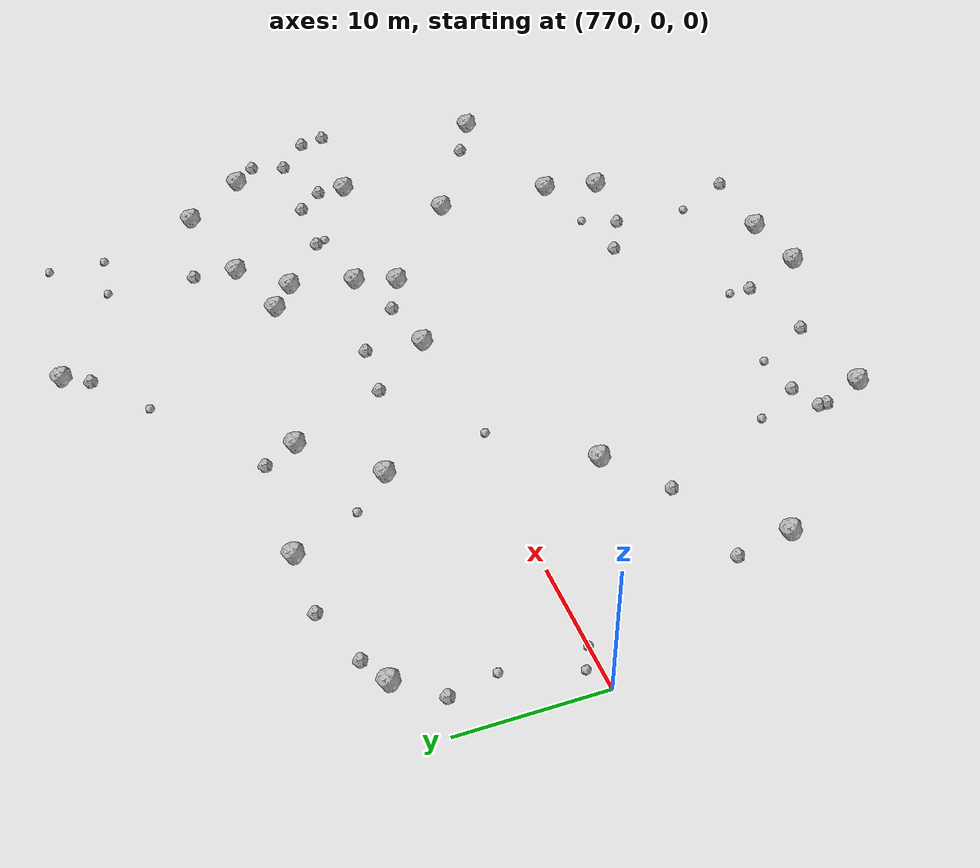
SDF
<sdf version="1.6">
 <world name="default">
  <include><uri>model://sun</uri></include>
  <model name="rock1_20_4">
   <include><uri>model://rock1</uri><pose>816.4699572652448 -6.6781873115841 0.5 0 0 0</pose></include>
  </model>
  <model name="rock1_20_5">
   <include><uri>model://rock1</uri><pose>774.9071217555187 12.044016204833042 0.5 0 0 0</pose></include>
  </model>
  <model name="rock1_20_6">
   <include><uri>model://rock1</uri><pose>824.7101289093531 6.7905320707043515 0.5 0 0 0</pose></include>
  </model>
  <model name="rock1_20_7">
   <include><uri>model://rock1</uri><pose>809.5463753951195 8.370434281833873 0.5 0 0 0</pose></include>
  </model>
  <model name="rock1_20_8">
   <include><uri>model://rock1</uri><pose>788.456252903674 -26.2782019811702 0.5 0 0 0</pose></include>
  </model>
  <model name="rock1_20_9">
   <include><uri>model://rock1</uri><pose>795.8567203639632 11.191984423111613 0.5 0 0 0</pose></include>
  </model>
  <model name="rock1_20_10">
   <include><uri>model://rock1</uri><pose>801.650497171176 -28.2998772106253 0.5 0 0 0</pose></include>
  </model>
  <model name="rock1_20_11">
   <include><uri>model://rock1</uri><pose>802.5344214506752 -0.09090947088737522 0.5 0 0 0</pose></include>
  </model>
  <model name="rock1_20_12">
   <include><uri>model://rock1</uri><pose>814.5396800413902 9.79382268639781 0.5 0 0 0</pose></include>
  </model>
  <model name="rock1_20_13">
   <include><uri>model://rock1</uri><pose>809.5001299171772 -0.6818946380443656 0.5 0 0 0</pose></include>
  </model>
  <model name="rock1_20_14">
   <include><uri>model://rock1</uri><pose>777.5214628877163 -15.467482886772784 0.5 0 0 0</pose></include>
  </model>
  <model name="rock1_20_15">
   <include><uri>model://rock1</uri><pose>787.7295361274123 -6.92897015822669 0.5 0 0 0</pose></include>
  </model>
  <model name="rock1_20_16">
   <include><uri>model://rock1</uri><pose>821.2474925205388 -0.5745139991381407 0.5 0 0 0</pose></include>
  </model>
  <model name="rock1_20_17">
   <include><uri>model://rock1</uri><pose>786.4427217597843 14.243740762325594 0.5 0 0 0</pose></include>
  </model>
  <model name="rock1_20_18">
   <include><uri>model://rock1</uri><pose>816.0014389135431 -14.860661264636823 0.5 0 0 0</pose></include>
  </model>
  <model name="rock1_20_19">
   <include><uri>model://rock1</uri><pose>815.0674559795132 -18.626169831083683 0.5 0 0 0</pose></include>
  </model>
  <model name="rock1_20_20">
   <include><uri>model://rock1</uri><pose>806.2504859571053 -27.56545779930303 0.5 0 0 0</pose></include>
  </model>
  <model name="rock1_20_21">
   <include><uri>model://rock1</uri><pose>811.6077099515703 6.669040707315929 0.5 0 0 0</pose></include>
  </model>
  <model name="rock1_20_22">
   <include><uri>model://rock1</uri><pose>807.5066371829644 24.075634209487063 0.5 0 0 0</pose></include>
  </model>
  <model name="rock1_20_23">
   <include><uri>model://rock1</uri><pose>821.4872874512236 11.25621749599241 0.5 0 0 0</pose></include>
  </model>
  <model name="rock1_20_24">
   <include><uri>model://rock1</uri><pose>791.2341833894866 6.592255918883438 0.5 0 0 0</pose></include>
  </model>
  <model name="rock1_20_25">
   <include><uri>model://rock1</uri><pose>825.7796542693673 -12.258289566524347 0.5 0 0 0</pose></include>
  </model>
  <model name="rock1_20_26">
   <include><uri>model://rock1</uri><pose>810.5203077139465 2.158768651720166 0.5 0 0 0</pose></include>
  </model>
  <model name="rock2_20_0">
   <include><uri>model://rock2</uri><pose>799.7832344703386 -23.92139635782234 0.3 0 0 0</pose></include>
  </model>
  <model name="rock2_20_1">
   <include><uri>model://rock2</uri><pose>772.6216262849634 9.223655508408264 0.3 0 0 0</pose></include>
  </model>
  <model name="rock2_20_2">
   <include><uri>model://rock2</uri><pose>787.1867316012866 -22.660865183382047 0.3 0 0 0</pose></include>
  </model>
  <model name="rock2_20_3">
   <include><uri>model://rock2</uri><pose>827.9980874304762 -1.0545022517879623 0.3 0 0 0</pose></include>
  </model>
  <model name="rock2_20_4">
   <include><uri>model://rock2</uri><pose>822.6692005320319 -10.56212278432421 0.3 0 0 0</pose></include>
  </model>
  <model name="rock2_20_5">
   <include><uri>model://rock2</uri><pose>783.4952446953922 -10.122403630710199 0.3 0 0 0</pose></include>
  </model>
  <model name="rock2_20_6">
   <include><uri>model://rock2</uri><pose>806.4237180458083 22.293154334160768 0.3 0 0 0</pose></include>
  </model>
  <model name="rock2_20_7">
   <include><uri>model://rock2</uri><pose>794.6655467061285 -25.275549436804674 0.3 0 0 0</pose></include>
  </model>
  <model name="rock2_20_8">
   <include><uri>model://rock2</uri><pose>802.9162138180344 3.881990620689038 0.3 0 0 0</pose></include>
  </model>
  <model name="rock2_20_9">
   <include><uri>model://rock2</uri><pose>811.7404438232885 -27.449293635637172 0.3 0 0 0</pose></include>
  </model>
  <model name="rock2_20_10">
   <include><uri>model://rock2</uri><pose>825.2725110932379 2.9013478895616913 0.3 0 0 0</pose></include>
  </model>
  <model name="rock2_20_11">
   <include><uri>model://rock2</uri><pose>776.9441139666368 13.074363279845315 0.3 0 0 0</pose></include>
  </model>
  <model name="rock2_20_12">
   <include><uri>model://rock2</uri><pose>819.7786246135919 3.1763005240881625 0.3 0 0 0</pose></include>
  </model>
  <model name="rock2_20_13">
   <include><uri>model://rock2</uri><pose>781.3714996485426 14.418480986906054 0.3 0 0 0</pose></include>
  </model>
  <model name="rock2_20_14">
   <include><uri>model://rock2</uri><pose>826.051980482241 5.193114812852357 0.3 0 0 0</pose></include>
  </model>
  <model name="rock2_20_15">
   <include><uri>model://rock2</uri><pose>794.5274346512409 13.5913320717301 0.3 0 0 0</pose></include>
  </model>
  <model name="rock2_20_16">
   <include><uri>model://rock2</uri><pose>807.3590879684776 -16.73443129745995 0.3 0 0 0</pose></include>
  </model>
  <model name="rock2_20_17">
   <include><uri>model://rock2</uri><pose>806.5957574352411 0.6821741211756951 0.3 0 0 0</pose></include>
  </model>
  <model name="rock2_20_18">
   <include><uri>model://rock2</uri><pose>789.2571733536189 -21.74527214055534 0.3 0 0 0</pose></include>
  </model>
  <model name="rock2_20_19">
   <include><uri>model://rock2</uri><pose>776.7393866237902 -11.423452220698955 0.3 0 0 0</pose></include>
  </model>
  <model name="rock2_20_20">
   <include><uri>model://rock2</uri><pose>821.2948420000077 1.379020161495113 0.3 0 0 0</pose></include>
  </model>
  <model name="rock2_20_21">
   <include><uri>model://rock2</uri><pose>827.6702913256972 0.7029821795780258 0.3 0 0 0</pose></include>
  </model>
  <model name="rock2_20_22">
   <include><uri>model://rock2</uri><pose>810.1940495514724 -18.228223243769946 0.3 0 0 0</pose></include>
  </model>
  <model name="rock2_20_23">
   <include><uri>model://rock2</uri><pose>787.1766078576254 -23.269018555625046 0.3 0 0 0</pose></include>
  </model>
  <model name="rock2_20_24">
   <include><uri>model://rock2</uri><pose>815.4014411230276 3.4280761561786477 0.3 0 0 0</pose></include>
  </model>
  <model name="rock2_20_25">
   <include><uri>model://rock2</uri><pose>798.8036442992723 4.3348778678390545 0.3 0 0 0</pose></include>
  </model>
  <model name="rock2_20_26">
   <include><uri>model://rock2</uri><pose>814.8238659596514 12.820810071531795 0.3 0 0 0</pose></include>
  </model>
  <model name="rock3_20_0">
   <include><uri>model://rock3</uri><pose>802.5070457276549 19.159942285301895 0.2 0 0 0</pose></include>
  </model>
  <model name="rock3_20_1">
   <include><uri>model://rock3</uri><pose>788.5724952637028 9.296247388857665 0.2 0 0 0</pose></include>
  </model>
  <model name="rock3_20_2">
   <include><uri>model://rock3</uri><pose>792.4892304214945 -21.38109439051917 0.2 0 0 0</pose></include>
  </model>
  <model name="rock3_20_3">
   <include><uri>model://rock3</uri><pose>771.7299939929346 0.8819651546542282 0.2 0 0 0</pose></include>
  </model>
  <model name="rock3_20_4">
   <include><uri>model://rock3</uri><pose>819.1024461878096 22.35172396742538 0.2 0 0 0</pose></include>
  </model>
  <model name="rock3_20_5">
   <include><uri>model://rock3</uri><pose>792.5352091471276 -0.9054200881363954 0.2 0 0 0</pose></include>
  </model>
  <model name="rock3_20_6">
   <include><uri>model://rock3</uri><pose>773.331167280633 5.793118030738938 0.2 0 0 0</pose></include>
  </model>
  <model name="rock3_20_7">
   <include><uri>model://rock3</uri><pose>818.9003928316165 18.3697265409738 0.2 0 0 0</pose></include>
  </model>
  <model name="rock3_20_8">
   <include><uri>model://rock3</uri><pose>815.7786433839067 2.626813699298893 0.2 0 0 0</pose></include>
  </model>
  <model name="rock3_20_9">
   <include><uri>model://rock3</uri><pose>809.8945662171036 -23.567144505222657 0.2 0 0 0</pose></include>
  </model>
  <model name="rock3_20_10">
   <include><uri>model://rock3</uri><pose>773.3509883938216 0.027862584507886368 0.2 0 0 0</pose></include>
  </model>
  <model name="rock3_20_11">
   <include><uri>model://rock3</uri><pose>799.8329405615868 -22.436910899162747 0.2 0 0 0</pose></include>
  </model>
  <model name="rock3_20_12">
   <include><uri>model://rock3</uri><pose>815.2599190144987 18.970647093994913 0.2 0 0 0</pose></include>
  </model>
  <model name="rock3_20_13">
   <include><uri>model://rock3</uri><pose>787.4009861218977 -18.598580146398376 0.2 0 0 0</pose></include>
  </model>
  <model name="rock3_20_14">
   <include><uri>model://rock3</uri><pose>811.3002895031376 -15.927324309083726 0.2 0 0 0</pose></include>
  </model>
 </world>
</sdf>
